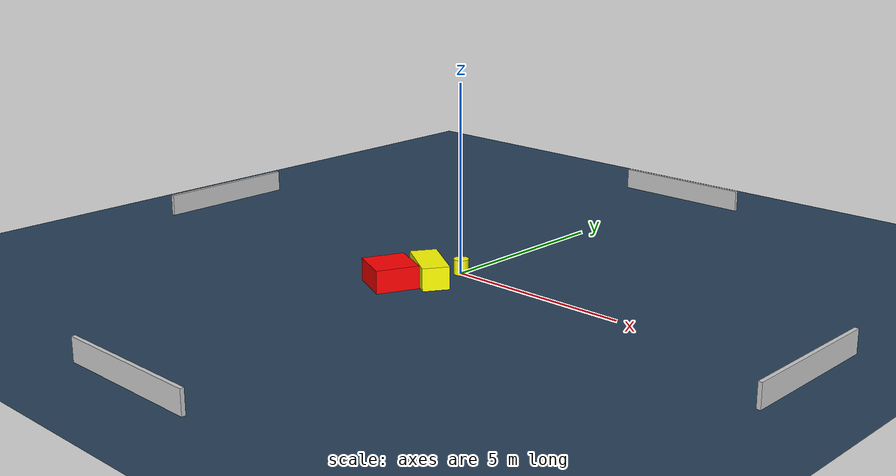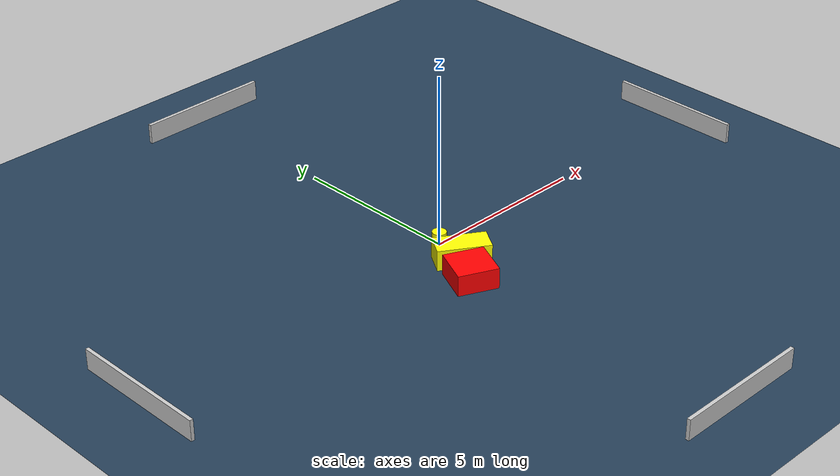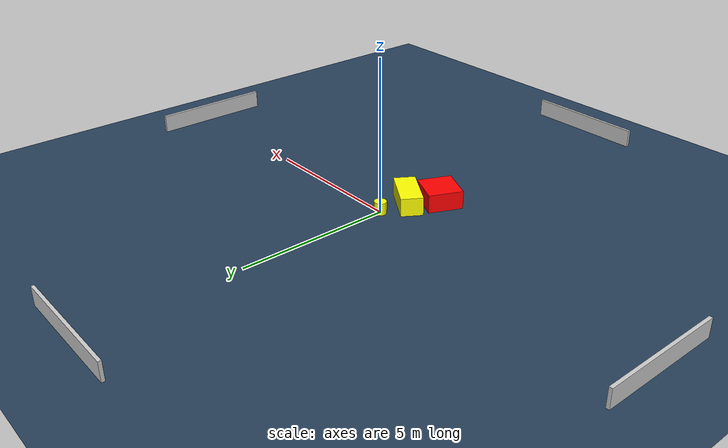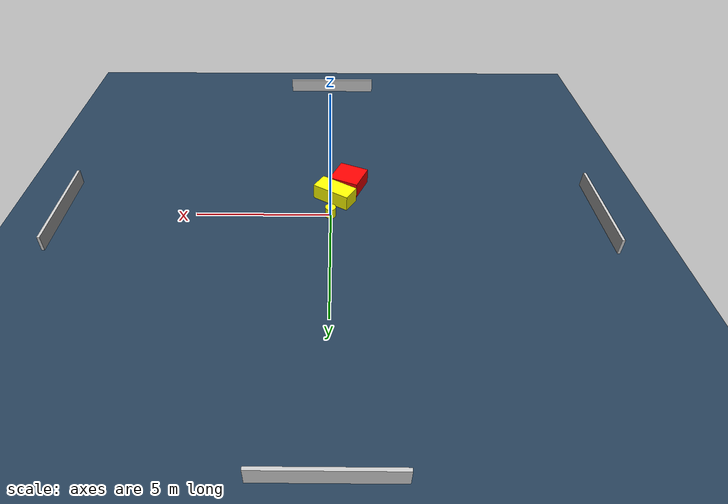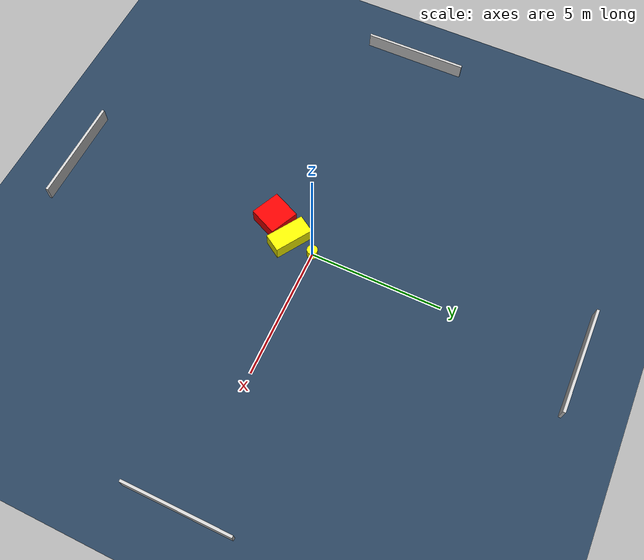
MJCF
<?xml version="1.0" ?>
<mujoco model="generated_environment">
  <option timestep="0.01" integrator="RK4" cone="elliptic"/>
  <default>
    <geom density="1"/>
  </default>
  <asset>
    <texture builtin="gradient" height="3072" name="skybox" rgb1="0.3 0.5 0.7" rgb2="0 0 0" type="skybox" width="512"/>
    <texture builtin="checker" height="300" name="groundplane" rgb1="0.2 0.3 0.4" rgb2="0.1 0.2 0.3" type="2d" width="300"/>
    <material name="groundplane" reflectance="0.2" texrepeat="5 5" texture="groundplane"/>
  </asset>
  <worldbody>
    <light dir="0 0 -1" directional="true" pos="0 0 1.5"/>
    <geom condim="3" friction="0.5 0.005 0.001" material="groundplane" name="floor" pos="0 0 0" size="0 0 0.05" type="plane"/>
    <body name="walls">
      <geom name="wall_1" condim="4" pos="-10.0 0.0 0.3" rgba="0.800000011920929 0.800000011920929 0.800000011920929 1.0" size="0.05 2.0 0.3" type="box"/>
      <geom name="wall_2" condim="4" pos="10.0 0.0 0.3" rgba="0.800000011920929 0.800000011920929 0.800000011920929 1.0" size="0.05 2.0 0.3" type="box"/>
      <geom name="wall_3" condim="4" pos="0.0 -10.0 0.3" rgba="0.800000011920929 0.800000011920929 0.800000011920929 1.0" size="2.0 0.05 0.3" type="box"/>
      <geom name="wall_4" condim="4" pos="0.0 10.0 0.3" rgba="0.800000011920929 0.800000011920929 0.800000011920929 1.0" size="2.0 0.05 0.3" type="box"/>
    </body>
    <body name="robot">
      <joint name="joint_x" type="slide" pos="0 0 0" axis="1 0 0"/>
      <joint name="joint_y" type="slide" pos="0 0 0" axis="0 1 0"/>
      <geom name="robot" type="cylinder" pos="0.0 0.0 0.2" size="0.2 0.2 0.0" mass="5.0" friction="1.0 0.005 0.0001" condim="4" rgba="1.0 1.0 0.0 1.0"/>
    </body>
    <body name="obstacle_1_movable">
      <geom name="obstacle_1_movable" condim="4" pos="-0.1639435820664673 -0.9978719826259344 0.3" euler="0 0 147.63224430355984" friction="0.0 0.005 0.001" rgba="1.0 1.0 0.0 1.0" size="0.7447956404484661 0.3558148844842406 0.3" type="box" mass="0.1"/>
      <joint type="free"/>
    </body>
    <body name="obstacle_2_static">
      <geom name="obstacle_2_static" condim="4" pos="-0.707701281027094 -1.8557793153065485 0.3" euler="0 0 245.52753050334744" friction="0.0 0.005 0.001" rgba="1.0 0.0 0.0 1.0" size="0.5644178079462012 0.5741918984583481 0.3" type="box"/>
    </body>
  </worldbody>
  <actuator>
    <motor name="actuator_x" joint="joint_x" gear="1" ctrlrange="-1 1"/>
    <motor name="actuator_y" joint="joint_y" gear="1" ctrlrange="-1 1"/>
  </actuator>
</mujoco>
